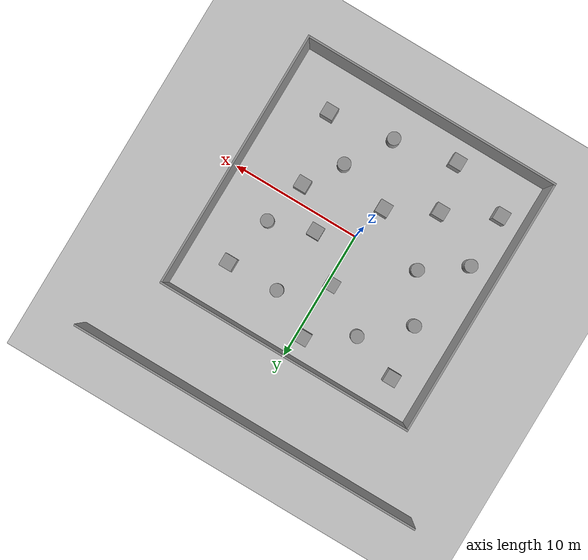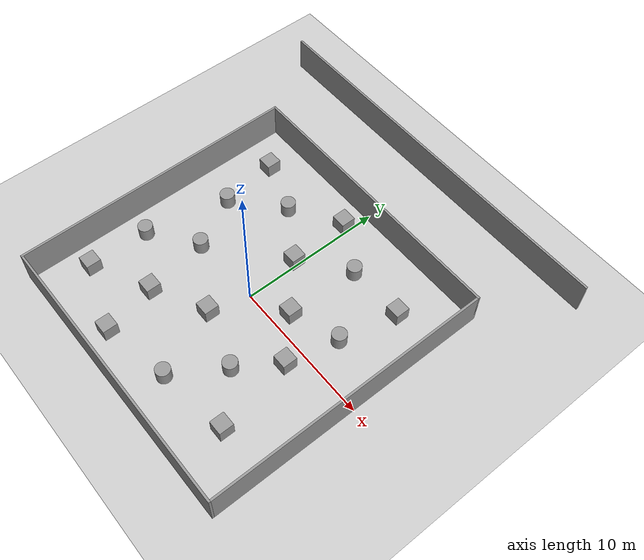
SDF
<sdf version="1.7">
 <world name="default">
  <light name="sun" type="directional">
   <pose>0 0 10 0 -0 0</pose>
   <diffuse>0.8 0.8 0.8 1</diffuse>
   <specular>0.2 0.2 0.2 1</specular>
   <attenuation>
    <range>1000</range>
    <constant>0.9</constant>
    <linear>0.01</linear>
    <quadratic>0.001</quadratic>
   </attenuation>
   <direction>-0.5 0.1 -0.9</direction>
   <spot><inner_angle>0</inner_angle><outer_angle>0</outer_angle><falloff>0</falloff></spot>
  </light>
  <model name="ground_plane">
   <static>1</static>
   <link name="link">
    <collision name="collision">
     <geometry><plane><normal>0 0 1</normal><size>100 100</size></plane></geometry>
     <surface>
      <contact><collide_bitmask>65535</collide_bitmask></contact>
      <friction><ode><mu>100</mu><mu2>50</mu2></ode></friction>
     </surface>
    </collision>
    <visual name="visual">
     <cast_shadows>0</cast_shadows>
     <geometry><plane><normal>0 0 1</normal><size>100 100</size></plane></geometry>
     <material>
      <script><uri>file://media/materials/scripts/gazebo.material</uri><name>Gazebo/Grey</name></script>
     </material>
    </visual>
   </link>
  </model>
  <gravity>0 0 -9.8</gravity>
  <magnetic_field>6e-06 2.3e-05 -4.2e-05</magnetic_field>
  <atmosphere type="adiabatic"/>
  <physics type="ode">
   <max_step_size>0.001</max_step_size>
   <real_time_factor>1</real_time_factor>
   <real_time_update_rate>1000</real_time_update_rate>
  </physics>
  <scene><ambient>0.4 0.4 0.4 1</ambient><background>0.7 0.7 0.7 1</background><shadows>1</shadows></scene>
  <spherical_coordinates>
   <surface_model>EARTH_WGS84</surface_model>
   <latitude_deg>0</latitude_deg>
   <longitude_deg>0</longitude_deg>
   <elevation>0</elevation>
   <heading_deg>0</heading_deg>
  </spherical_coordinates>
  <model name="tesgin1">
   <pose>-0.201917 2.65928 0 0 -0 0</pose>
   <link name="Wall_2">
    <collision name="Wall_2_Collision">
     <geometry><box><size>27.5 0.15 2.5</size></box></geometry>
     <pose>0 0 1.25 0 -0 0</pose>
    </collision>
    <visual name="Wall_2_Visual">
     <pose>0 0 1.25 0 -0 0</pose>
     <geometry><box><size>27.5 0.15 2.5</size></box></geometry>
     <material>
      <script><uri>file://media/materials/scripts/gazebo.material</uri><name>Gazebo/Grey</name></script>
      <ambient>1 1 1 1</ambient>
     </material>
     <meta><layer>0</layer></meta>
    </visual>
    <pose>0 12.7198 0 0 -0 0</pose>
   </link>
   <link name="Wall_4">
    <collision name="Wall_4_Collision">
     <geometry><box><size>20 0.15 2.5</size></box></geometry>
     <pose>0 0 1.25 0 -0 0</pose>
    </collision>
    <visual name="Wall_4_Visual">
     <pose>0 0 1.25 0 -0 0</pose>
     <geometry><box><size>20 0.15 2.5</size></box></geometry>
     <material>
      <script><uri>file://media/materials/scripts/gazebo.material</uri><name>Gazebo/Grey</name></script>
      <ambient>1 1 1 1</ambient>
     </material>
     <meta><layer>0</layer></meta>
    </visual>
    <pose>0.190236 7.13024 0 0 -0 3.14159</pose>
   </link>
   <link name="Wall_6">
    <collision name="Wall_6_Collision">
     <geometry><box><size>20 0.15 2.5</size></box></geometry>
     <pose>0 0 1.25 0 -0 0</pose>
    </collision>
    <visual name="Wall_6_Visual">
     <pose>0 0 1.25 0 -0 0</pose>
     <geometry><box><size>20 0.15 2.5</size></box></geometry>
     <material>
      <script><uri>file://media/materials/scripts/gazebo.material</uri><name>Gazebo/Grey</name></script>
      <ambient>1 1 1 1</ambient>
     </material>
     <meta><layer>0</layer></meta>
    </visual>
    <pose>10.1152 -2.79476 0 0 -0 -1.5708</pose>
   </link>
   <link name="Wall_7">
    <collision name="Wall_7_Collision">
     <geometry><box><size>20 0.15 2.5</size></box></geometry>
     <pose>0 0 1.25 0 -0 0</pose>
    </collision>
    <visual name="Wall_7_Visual">
     <pose>0 0 1.25 0 -0 0</pose>
     <geometry><box><size>20 0.15 2.5</size></box></geometry>
     <material>
      <script><uri>file://media/materials/scripts/gazebo.material</uri><name>Gazebo/Grey</name></script>
      <ambient>1 1 1 1</ambient>
     </material>
     <meta><layer>0</layer></meta>
    </visual>
    <pose>0.190236 -12.7198 0 0 -0 3.14159</pose>
   </link>
   <link name="Wall_8">
    <collision name="Wall_8_Collision">
     <geometry><box><size>20 0.15 2.5</size></box></geometry>
     <pose>0 0 1.25 0 -0 0</pose>
    </collision>
    <visual name="Wall_8_Visual">
     <pose>0 0 1.25 0 -0 0</pose>
     <geometry><box><size>20 0.15 2.5</size></box></geometry>
     <material>
      <script><uri>file://media/materials/scripts/gazebo.material</uri><name>Gazebo/Grey</name></script>
      <ambient>1 1 1 1</ambient>
     </material>
     <meta><layer>0</layer></meta>
    </visual>
    <pose>-9.73476 -2.79476 0 0 -0 1.5708</pose>
   </link>
   <static>1</static>
  </model>
  <model name="unit_cylinder">
   <pose>-6.90165 3.31331 0.5 0 -0 0</pose>
   <link name="link">
    <inertial>
     <mass>1</mass>
     <inertia><ixx>0.145833</ixx><ixy>0</ixy><ixz>0</ixz><iyy>0.145833</iyy><iyz>0</iyz><izz>0.125</izz></inertia>
    </inertial>
    <collision name="collision">
     <geometry><cylinder><radius>0.5</radius><length>1</length></cylinder></geometry>
    </collision>
    <visual name="visual">
     <geometry><cylinder><radius>0.5</radius><length>1</length></cylinder></geometry>
     <material>
      <script><name>Gazebo/Grey</name><uri>file://media/materials/scripts/gazebo.material</uri></script>
     </material>
    </visual>
   </link>
  </model>
  <model name="unit_cylinder_0">
   <pose>-3.77545 6.05472 0.5 0 -0 0</pose>
   <link name="link">
    <inertial>
     <mass>1</mass>
     <inertia><ixx>0.145833</ixx><ixy>0</ixy><ixz>0</ixz><iyy>0.145833</iyy><iyz>0</iyz><izz>0.125</izz></inertia>
    </inertial>
    <collision name="collision">
     <geometry><cylinder><radius>0.5</radius><length>1</length></cylinder></geometry>
    </collision>
    <visual name="visual">
     <geometry><cylinder><radius>0.5</radius><length>1</length></cylinder></geometry>
     <material>
      <script><name>Gazebo/Grey</name><uri>file://media/materials/scripts/gazebo.material</uri></script>
     </material>
    </visual>
   </link>
  </model>
  <model name="unit_cylinder_1">
   <pose>2.83342 6.18279 0.5 0 -0 0</pose>
   <link name="link">
    <inertial>
     <mass>1</mass>
     <inertia><ixx>0.145833</ixx><ixy>0</ixy><ixz>0</ixz><iyy>0.145833</iyy><iyz>0</iyz><izz>0.125</izz></inertia>
    </inertial>
    <collision name="collision">
     <geometry><cylinder><radius>0.5</radius><length>1</length></cylinder></geometry>
    </collision>
    <visual name="visual">
     <geometry><cylinder><radius>0.5</radius><length>1</length></cylinder></geometry>
     <material>
      <script><name>Gazebo/Grey</name><uri>file://media/materials/scripts/gazebo.material</uri></script>
     </material>
    </visual>
   </link>
  </model>
  <model name="unit_box">
   <pose>-0.312935 3.81028 0.5 0 -0 0</pose>
   <link name="link">
    <inertial>
     <mass>1</mass>
     <inertia>
      <ixx>0.166667</ixx>
      <ixy>0</ixy>
      <ixz>0</ixz>
      <iyy>0.166667</iyy>
      <iyz>0</iyz>
      <izz>0.166667</izz>
     </inertia>
    </inertial>
    <collision name="collision"><geometry><box><size>1 1 1</size></box></geometry></collision>
    <visual name="visual">
     <geometry><box><size>1 1 1</size></box></geometry>
     <material>
      <script><name>Gazebo/Grey</name><uri>file://media/materials/scripts/gazebo.material</uri></script>
     </material>
    </visual>
   </link>
  </model>
  <model name="unit_cylinder_2">
   <pose>5.96815 2.2778 0.5 0 -0 0</pose>
   <link name="link">
    <inertial>
     <mass>1</mass>
     <inertia><ixx>0.145833</ixx><ixy>0</ixy><ixz>0</ixz><iyy>0.145833</iyy><iyz>0</iyz><izz>0.125</izz></inertia>
    </inertial>
    <collision name="collision">
     <geometry><cylinder><radius>0.5</radius><length>1</length></cylinder></geometry>
    </collision>
    <visual name="visual">
     <geometry><cylinder><radius>0.5</radius><length>1</length></cylinder></geometry>
     <material>
      <script><name>Gazebo/Grey</name><uri>file://media/materials/scripts/gazebo.material</uri></script>
     </material>
    </visual>
   </link>
  </model>
  <model name="unit_box_0">
   <pose>5.15949 -1.25573 0.5 0 -0 0</pose>
   <link name="link">
    <inertial>
     <mass>1</mass>
     <inertia>
      <ixx>0.166667</ixx>
      <ixy>0</ixy>
      <ixz>0</ixz>
      <iyy>0.166667</iyy>
      <iyz>0</iyz>
      <izz>0.166667</izz>
     </inertia>
    </inertial>
    <collision name="collision"><geometry><box><size>1 1 1</size></box></geometry></collision>
    <visual name="visual">
     <geometry><box><size>1 1 1</size></box></geometry>
     <material>
      <script><name>Gazebo/Grey</name><uri>file://media/materials/scripts/gazebo.material</uri></script>
     </material>
    </visual>
   </link>
  </model>
  <model name="unit_cylinder_3">
   <pose>3.35198 -3.99932 0.5 0 -0 0</pose>
   <link name="link">
    <inertial>
     <mass>1</mass>
     <inertia><ixx>0.145833</ixx><ixy>0</ixy><ixz>0</ixz><iyy>0.145833</iyy><iyz>0</iyz><izz>0.125</izz></inertia>
    </inertial>
    <collision name="collision">
     <geometry><cylinder><radius>0.5</radius><length>1</length></cylinder></geometry>
    </collision>
    <visual name="visual">
     <geometry><cylinder><radius>0.5</radius><length>1</length></cylinder></geometry>
     <material>
      <script><name>Gazebo/Grey</name><uri>file://media/materials/scripts/gazebo.material</uri></script>
     </material>
    </visual>
   </link>
  </model>
  <model name="unit_box_1">
   <pose>-0.707431 -2.74711 0.5 0 -0 0</pose>
   <link name="link">
    <inertial>
     <mass>1</mass>
     <inertia>
      <ixx>0.166667</ixx>
      <ixy>0</ixy>
      <ixz>0</ixz>
      <iyy>0.166667</iyy>
      <iyz>0</iyz>
      <izz>0.166667</izz>
     </inertia>
    </inertial>
    <collision name="collision"><geometry><box><size>1 1 1</size></box></geometry></collision>
    <visual name="visual">
     <geometry><box><size>1 1 1</size></box></geometry>
     <material>
      <script><name>Gazebo/Grey</name><uri>file://media/materials/scripts/gazebo.material</uri></script>
     </material>
    </visual>
   </link>
  </model>
  <model name="unit_cylinder_4">
   <pose>1.24053 -7.36464 0.5 0 -0 0</pose>
   <link name="link">
    <inertial>
     <mass>1</mass>
     <inertia><ixx>0.145833</ixx><ixy>0</ixy><ixz>0</ixz><iyy>0.145833</iyy><iyz>0</iyz><izz>0.125</izz></inertia>
    </inertial>
    <collision name="collision">
     <geometry><cylinder><radius>0.5</radius><length>1</length></cylinder></geometry>
    </collision>
    <visual name="visual">
     <geometry><cylinder><radius>0.5</radius><length>1</length></cylinder></geometry>
     <material>
      <script><name>Gazebo/Grey</name><uri>file://media/materials/scripts/gazebo.material</uri></script>
     </material>
    </visual>
   </link>
  </model>
  <model name="unit_box_2">
   <pose>6.1804 -6.65993 0.5 0 -0 0</pose>
   <link name="link">
    <inertial>
     <mass>1</mass>
     <inertia>
      <ixx>0.166667</ixx>
      <ixy>0</ixy>
      <ixz>0</ixz>
      <iyy>0.166667</iyy>
      <iyz>0</iyz>
      <izz>0.166667</izz>
     </inertia>
    </inertial>
    <collision name="collision"><geometry><box><size>1 1 1</size></box></geometry></collision>
    <visual name="visual">
     <geometry><box><size>1 1 1</size></box></geometry>
     <material>
      <script><name>Gazebo/Grey</name><uri>file://media/materials/scripts/gazebo.material</uri></script>
     </material>
    </visual>
   </link>
  </model>
  <model name="unit_box_3">
   <pose>6.82703 6.25088 0.5 0 -0 0</pose>
   <link name="link">
    <inertial>
     <mass>1</mass>
     <inertia>
      <ixx>0.166667</ixx>
      <ixy>0</ixy>
      <ixz>0</ixz>
      <iyy>0.166667</iyy>
      <iyz>0</iyz>
      <izz>0.166667</izz>
     </inertia>
    </inertial>
    <collision name="collision"><geometry><box><size>1 1 1</size></box></geometry></collision>
    <visual name="visual">
     <geometry><box><size>1 1 1</size></box></geometry>
     <material>
      <script><name>Gazebo/Grey</name><uri>file://media/materials/scripts/gazebo.material</uri></script>
     </material>
    </visual>
   </link>
  </model>
  <model name="unit_box_4">
   <pose>-7.42158 7.33263 0.5 0 -0 0</pose>
   <link name="link">
    <inertial>
     <mass>1</mass>
     <inertia>
      <ixx>0.166667</ixx>
      <ixy>0</ixy>
      <ixz>0</ixz>
      <iyy>0.166667</iyy>
      <iyz>0</iyz>
      <izz>0.166667</izz>
     </inertia>
    </inertial>
    <collision name="collision"><geometry><box><size>1 1 1</size></box></geometry></collision>
    <visual name="visual">
     <geometry><box><size>1 1 1</size></box></geometry>
     <material>
      <script><name>Gazebo/Grey</name><uri>file://media/materials/scripts/gazebo.material</uri></script>
     </material>
    </visual>
   </link>
  </model>
  <model name="unit_cylinder_5">
   <pose>-5.02245 -0.213262 0.5 0 -0 0</pose>
   <link name="link">
    <inertial>
     <mass>1</mass>
     <inertia><ixx>0.145833</ixx><ixy>0</ixy><ixz>0</ixz><iyy>0.145833</iyy><iyz>0</iyz><izz>0.125</izz></inertia>
    </inertial>
    <collision name="collision">
     <geometry><cylinder><radius>0.5</radius><length>1</length></cylinder></geometry>
    </collision>
    <visual name="visual">
     <geometry><cylinder><radius>0.5</radius><length>1</length></cylinder></geometry>
     <material>
      <script><name>Gazebo/Grey</name><uri>file://media/materials/scripts/gazebo.material</uri></script>
     </material>
    </visual>
   </link>
  </model>
  <model name="unit_box_5">
   <pose>-4.28119 -4.63169 0.5 0 -0 0</pose>
   <link name="link">
    <inertial>
     <mass>1</mass>
     <inertia>
      <ixx>0.166667</ixx>
      <ixy>0</ixy>
      <ixz>0</ixz>
      <iyy>0.166667</iyy>
      <iyz>0</iyz>
      <izz>0.166667</izz>
     </inertia>
    </inertial>
    <collision name="collision"><geometry><box><size>1 1 1</size></box></geometry></collision>
    <visual name="visual">
     <geometry><box><size>1 1 1</size></box></geometry>
     <material>
      <script><name>Gazebo/Grey</name><uri>file://media/materials/scripts/gazebo.material</uri></script>
     </material>
    </visual>
   </link>
  </model>
  <model name="unit_box_6">
   <pose>-8.15955 -6.60141 0.5 0 -0 0</pose>
   <link name="link">
    <inertial>
     <mass>1</mass>
     <inertia>
      <ixx>0.166667</ixx>
      <ixy>0</ixy>
      <ixz>0</ixz>
      <iyy>0.166667</iyy>
      <iyz>0</iyz>
      <izz>0.166667</izz>
     </inertia>
    </inertial>
    <collision name="collision"><geometry><box><size>1 1 1</size></box></geometry></collision>
    <visual name="visual">
     <geometry><box><size>1 1 1</size></box></geometry>
     <material>
      <script><name>Gazebo/Grey</name><uri>file://media/materials/scripts/gazebo.material</uri></script>
     </material>
    </visual>
   </link>
  </model>
  <model name="unit_box_7">
   <pose>-3.50958 -8.29325 0.5 0 -0 0</pose>
   <link name="link">
    <inertial>
     <mass>1</mass>
     <inertia>
      <ixx>0.166667</ixx>
      <ixy>0</ixy>
      <ixz>0</ixz>
      <iyy>0.166667</iyy>
      <iyz>0</iyz>
      <izz>0.166667</izz>
     </inertia>
    </inertial>
    <collision name="collision"><geometry><box><size>1 1 1</size></box></geometry></collision>
    <visual name="visual">
     <geometry><box><size>1 1 1</size></box></geometry>
     <material>
      <script><name>Gazebo/Grey</name><uri>file://media/materials/scripts/gazebo.material</uri></script>
     </material>
    </visual>
   </link>
  </model>
  <model name="unit_box_8">
   <pose>2.63651 1.15782 0.5 0 -0 0</pose>
   <link name="link">
    <inertial>
     <mass>1</mass>
     <inertia>
      <ixx>0.166667</ixx>
      <ixy>0</ixy>
      <ixz>0</ixz>
      <iyy>0.166667</iyy>
      <iyz>0</iyz>
      <izz>0.166667</izz>
     </inertia>
    </inertial>
    <collision name="collision"><geometry><box><size>1 1 1</size></box></geometry></collision>
    <visual name="visual">
     <geometry><box><size>1 1 1</size></box></geometry>
     <material>
      <script><name>Gazebo/Grey</name><uri>file://media/materials/scripts/gazebo.material</uri></script>
     </material>
    </visual>
   </link>
  </model>
  <model name="unit_box_9">
   <pose>-0.489755 8.11298 0.5 0 -0 0</pose>
   <link name="link">
    <inertial>
     <mass>1</mass>
     <inertia>
      <ixx>0.166667</ixx>
      <ixy>0</ixy>
      <ixz>0</ixz>
      <iyy>0.166667</iyy>
      <iyz>0</iyz>
      <izz>0.166667</izz>
     </inertia>
    </inertial>
    <collision name="collision"><geometry><box><size>1 1 1</size></box></geometry></collision>
    <visual name="visual">
     <geometry><box><size>1 1 1</size></box></geometry>
     <material>
      <script><name>Gazebo/Grey</name><uri>file://media/materials/scripts/gazebo.material</uri></script>
     </material>
    </visual>
   </link>
  </model>
  <model name="unit_cylinder_6">
   <pose>-8.13558 -2.42063 0.5 0 -0 0</pose>
   <link name="link">
    <inertial>
     <mass>1</mass>
     <inertia><ixx>0.145833</ixx><ixy>0</ixy><ixz>0</ixz><iyy>0.145833</iyy><iyz>0</iyz><izz>0.125</izz></inertia>
    </inertial>
    <collision name="collision">
     <geometry><cylinder><radius>0.5</radius><length>1</length></cylinder></geometry>
    </collision>
    <visual name="visual">
     <geometry><cylinder><radius>0.5</radius><length>1</length></cylinder></geometry>
     <material>
      <script><name>Gazebo/Grey</name><uri>file://media/materials/scripts/gazebo.material</uri></script>
     </material>
    </visual>
   </link>
  </model>
 </world>
</sdf>
